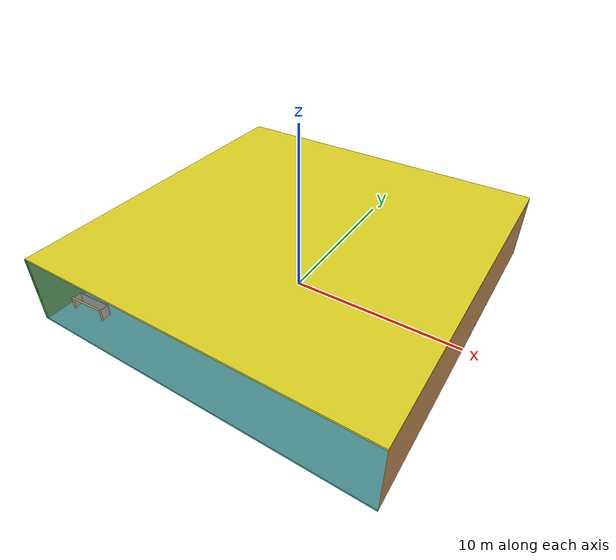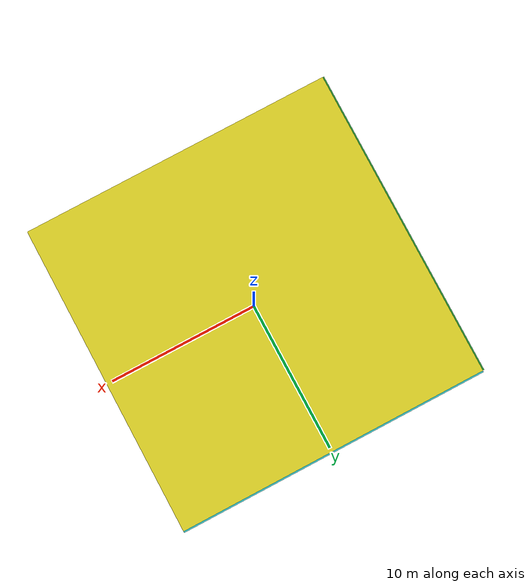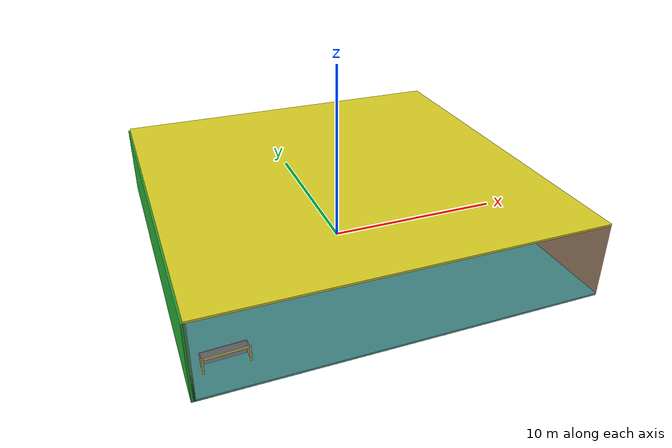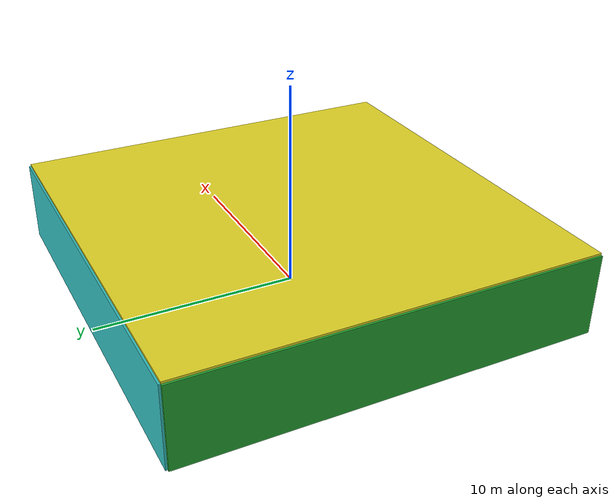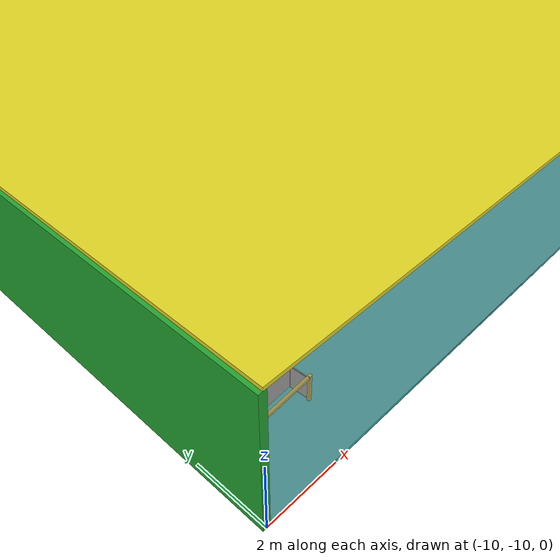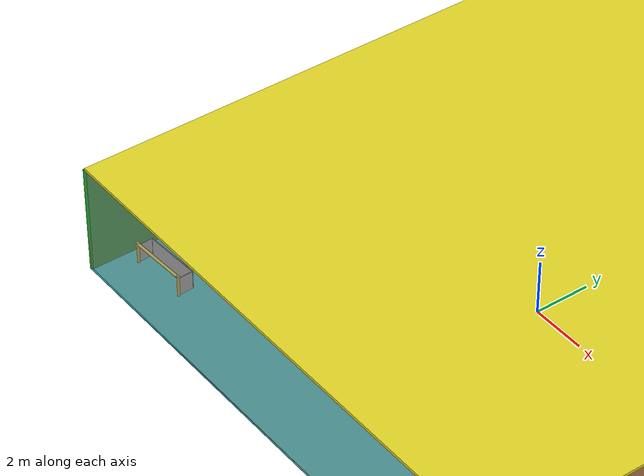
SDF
<sdf version="1.4">
 <world name="default">
  <physics type="ode">
   <max_step_size>0.001</max_step_size>
   <real_time_factor>1</real_time_factor>
   <real_time_update_rate>1000</real_time_update_rate>
   <gravity>0 0 -9.8</gravity>
  </physics>
  <scene><ambient>0.4 0.4 0.4 1</ambient><background>0.7 0.7 0.7 1</background><shadows>1</shadows></scene>
  <model name="Surrounding">
   <static>1</static>
   <link name="Ceiling">
    <collision name="Ceiling_Collision"><geometry><box><size>20 20 0.1</size></box></geometry></collision>
    <visual name="Ceiling_Visual">
     <geometry><box><size>20 20 0.1</size></box></geometry>
     <material>
      <script><uri>file://media/materials/scripts/gazebo.material</uri><name>Gazebo/Yellow</name></script>
     </material>
    </visual>
    <pose>0 0 4.05 0 0 0</pose>
   </link>
   <link name="Wall_South">
    <collision name="Wall_South_Collision">
     <geometry><box><size>20 0 4</size></box></geometry>
     <pose>0 0 2 0 -0 0</pose>
    </collision>
    <visual name="Wall_South_Visual">
     <pose>0 0 2 0 -0 0</pose>
     <geometry><box><size>20 0 4</size></box></geometry>
     <material>
      <script><uri>file://media/materials/scripts/gazebo.material</uri><name>Gazebo/GreyTransparent</name></script>
     </material>
    </visual>
    <velocity_decay><linear>0</linear><angular>0</angular></velocity_decay>
    <pose>0 -10 0 0 -0 0</pose>
   </link>
   <link name="Wall_East">
    <collision name="Wall_21_Collision">
     <geometry><box><size>20 0 4</size></box></geometry>
     <pose>0 0 2 0 -0 0</pose>
    </collision>
    <visual name="Wall_21_Visual">
     <pose>0 0 2 0 -0 0</pose>
     <geometry><box><size>20 0 4</size></box></geometry>
     <material>
      <script><uri>file://media/materials/scripts/gazebo.material</uri><name>Gazebo/WoodPallet</name></script>
     </material>
    </visual>
    <velocity_decay><linear>0</linear><angular>0</angular></velocity_decay>
    <pose>10 0 0 0 -0 1.5708</pose>
   </link>
   <link name="Wall_North">
    <collision name="Wall_22_Collision">
     <geometry><box><size>20 0.2 4</size></box></geometry>
     <pose>0 0 2 0 -0 0</pose>
    </collision>
    <visual name="Wall_22_Visual">
     <pose>0 0 2 0 -0 0</pose>
     <geometry><box><size>20 0.2 4</size></box></geometry>
     <material>
      <script>
       <uri>file://media/materials/scripts/gazebo.material</uri>
       <name>Gazebo/TurquoiseGlowOutline</name>
      </script>
     </material>
    </visual>
    <velocity_decay><linear>0</linear><angular>0</angular></velocity_decay>
    <pose>0 10 0 0 -0 0</pose>
   </link>
   <link name="Wall_West">
    <collision name="Wall_23_Collision">
     <geometry><box><size>20 0.2 4</size></box></geometry>
     <pose>0 0 2 0 -0 0</pose>
    </collision>
    <visual name="Wall_23_Visual">
     <pose>0 0 2 0 -0 0</pose>
     <geometry><box><size>20 0.2 4</size></box></geometry>
     <material>
      <script><uri>file://media/materials/scripts/gazebo.material</uri><name>Gazebo/Green</name></script>
     </material>
    </visual>
    <velocity_decay><linear>0</linear><angular>0</angular></velocity_decay>
    <pose>-10 0 0 0 0 -1.5708</pose>
   </link>
   <link name="Ground_link">
    <collision name="collision">
     <pose>0 0 .05 0 -0 0</pose>
     <geometry><box><size>20 20 0.1</size></box></geometry>
    </collision>
    <visual name="visual">
     <pose>0 0 .05 0 -0 0</pose>
     <geometry><box><size>20 20 0.1</size></box></geometry>
     <material>
      <script>
       <uri>file://media/materials/scripts/gazebo.material</uri>
       <name>Gazebo/TurquoiseGlowOutline</name>
      </script>
     </material>
    </visual>
   </link>
   <static>1</static>
  </model>
  <spherical_coordinates>
   <surface_model>EARTH_WGS84</surface_model>
   <latitude_deg>0</latitude_deg>
   <longitude_deg>0</longitude_deg>
   <elevation>0</elevation>
   <heading_deg>0</heading_deg>
  </spherical_coordinates>
  <light name="lightball_0" type="diffuse">
   <diffuse>0.8 0.8 0.8 1</diffuse>
   <specular>0.2 0.2 0.2 1</specular>
   <attenuation>
    <range>100</range>
    <constant>0.7</constant>
    <linear>0.01</linear>
    <quadratic>0.001</quadratic>
   </attenuation>
   <direction>-0.5 0.1 -0.9</direction>
   <pose>-8.59495353047 3.12189907795 3.34957130508 0 0 0</pose>
  </light>
  <light name="lightball_1" type="diffuse">
   <diffuse>0.8 0.8 0.8 1</diffuse>
   <specular>0.2 0.2 0.2 1</specular>
   <attenuation>
    <range>100</range>
    <constant>0.7</constant>
    <linear>0.01</linear>
    <quadratic>0.001</quadratic>
   </attenuation>
   <direction>-0.5 0.1 -0.9</direction>
   <pose>2.37106459927 8.7517383712 2.91183459929 0 0 0</pose>
  </light>
  <light name="lightball_2" type="diffuse">
   <diffuse>0.8 0.8 0.8 1</diffuse>
   <specular>0.2 0.2 0.2 1</specular>
   <attenuation>
    <range>100</range>
    <constant>0.7</constant>
    <linear>0.01</linear>
    <quadratic>0.001</quadratic>
   </attenuation>
   <direction>-0.5 0.1 -0.9</direction>
   <pose>0.633537327641 -2.13977299755 3.44288476601 0 0 0</pose>
  </light>
  <light name="lightball_3" type="diffuse">
   <diffuse>0.8 0.8 0.8 1</diffuse>
   <specular>0.2 0.2 0.2 1</specular>
   <attenuation>
    <range>100</range>
    <constant>0.7</constant>
    <linear>0.01</linear>
    <quadratic>0.001</quadratic>
   </attenuation>
   <direction>-0.5 0.1 -0.9</direction>
   <pose>-3.5008098024 -1.53589447689 1.88756601099 0 0 0</pose>
  </light>
  <light name="lightball_4" type="diffuse">
   <diffuse>0.8 0.8 0.8 1</diffuse>
   <specular>0.2 0.2 0.2 1</specular>
   <attenuation>
    <range>100</range>
    <constant>0.7</constant>
    <linear>0.01</linear>
    <quadratic>0.001</quadratic>
   </attenuation>
   <direction>-0.5 0.1 -0.9</direction>
   <pose>-4.56798608861 -9.21666437838 2.13643166219 0 0 0</pose>
  </light>
  <include>
   <uri>model://robocup_3Dsim_goal</uri>
   <pose>-8.27986462256 -8.60618432583 0 0 0 1.6216888235</pose>
  </include>
  <include>
   <uri>model://construction_cone</uri>
   <pose>-4.94867060545 -4.88652298042 0 0 0 2.48236062439</pose>
  </include>
  <include>
   <uri>model://textured_shapes</uri>
   <pose>5.01334992571 0.314335123591 0 0 0 0.504803219864</pose>
  </include>
  <include><uri>model://table</uri><pose>7.73694572372 0.635737605246 0 0 0 2.24336768345</pose></include>
  <include><uri>model://cabinet</uri><pose>6.79964450885 5.1433398077 0 0 0 2.12308857592</pose></include>
 </world>
</sdf>

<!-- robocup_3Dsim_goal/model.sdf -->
<sdf version="1.5">
  <model name="robocup_3d_goal">
    <static>true</static>
    <link name="left_post">
      <pose>0 1.05 0.45 0 0 0</pose>
      <collision name="collision">
        <geometry>
          <cylinder>
            <radius>0.05</radius>
            <length>0.9</length>
          </cylinder>
        </geometry>
      </collision>
      <visual name="visual">
        <geometry>
          <cylinder>
            <radius>0.05</radius>
            <length>0.9</length>
          </cylinder>
        </geometry>
        <material>
          <script>
            <uri>file://media/materials/scripts/gazebo.material</uri>
            <name>Gazebo/ZincYellow</name>
          </script>
        </material>
      </visual>
    </link>
    <link name="left_support_horiz_lower">
      <pose>0.30 1.05 0.01 0 0 0</pose>
      <collision name="collision">
        <geometry>
          <box>
            <size>0.50 0.02 0.02</size>
          </box>
        </geometry>
      </collision>
      <visual name="visual">
        <geometry>
          <box>
            <size>0.50 0.02 0.02</size>
          </box>
        </geometry>
        <material>
          <script>
            <uri>file://media/materials/scripts/gazebo.material</uri>
            <name>Gazebo/White</name>
          </script>
        </material>
      </visual>
    </link>
    <link name="left_support_horiz_upper">
      <pose>0.30 1.05 0.79 0 0 0</pose>
      <collision name="collision">
        <geometry>
          <box>
            <size>0.50 0.02 0.02</size>
          </box>
        </geometry>
      </collision>
      <visual name="visual">
        <geometry>
          <box>
            <size>0.50 0.02 0.02</size>
          </box>
        </geometry>
        <material>
          <script>
            <uri>file://media/materials/scripts/gazebo.material</uri>
            <name>Gazebo/White</name>
          </script>
        </material>
      </visual>
    </link>
    <link name="left_support_vertical">
      <pose>0.56 1.05 0.4 0 1.5708 0</pose>
      <collision name="collision">
        <geometry>
          <box>
            <size>0.80 0.02 0.02</size>
          </box>
        </geometry>
      </collision>
      <visual name="visual">
        <geometry>
          <box>
            <size>0.80 0.02 0.02</size>
          </box>
        </geometry>
        <material>
          <script>
            <uri>file://media/materials/scripts/gazebo.material</uri>
            <name>Gazebo/White</name>
          </script>
        </material>
      </visual>
    </link>
    <link name="right_support_horiz_lower">
      <pose>0.30 -1.05 0.01 0 0 0</pose>
      <collision name="collision">
        <geometry>
          <box>
            <size>0.50 0.02 0.02</size>
          </box>
        </geometry>
      </collision>
      <visual name="visual">
        <geometry>
          <box>
            <size>0.50 0.02 0.02</size>
          </box>
        </geometry>
        <material>
          <script>
            <uri>file://media/materials/scripts/gazebo.material</uri>
            <name>Gazebo/White</name>
          </script>
        </material>
      </visual>
    </link>
    <link name="right_support_horiz_upper">
      <pose>0.30 -1.05 0.79 0 0 0</pose>
      <collision name="collision">
        <geometry>
          <box>
            <size>0.50 0.02 0.02</size>
          </box>
        </geometry>
      </collision>
      <visual name="visual">
        <geometry>
          <box>
            <size>0.50 0.02 0.02</size>
          </box>
        </geometry>
        <material>
          <script>
            <uri>file://media/materials/scripts/gazebo.material</uri>
            <name>Gazebo/White</name>
          </script>
        </material>
      </visual>
    </link>
    <link name="right_support_vertical">
      <pose>0.56 -1.05 0.4 0 1.5708 0</pose>
      <collision name="collision">
        <geometry>
          <box>
            <size>0.80 0.02 0.02</size>
          </box>
        </geometry>
      </collision>
      <visual name="visual">
        <geometry>
          <box>
            <size>0.80 0.02 0.02</size>
          </box>
        </geometry>
        <material>
          <script>
            <uri>file://media/materials/scripts/gazebo.material</uri>
            <name>Gazebo/White</name>
          </script>
        </material>
      </visual>
    </link>
    <link name="center_support_horiz_lower">
      <pose>0.56 0 0.01 0 1.5708 0</pose>
      <collision name="collision">
        <geometry>
          <box>
            <size>0.02 2.08 0.02</size>
          </box>
        </geometry>
      </collision>
      <visual name="visual">
        <geometry>
          <box>
            <size>0.02 2.08 0.02</size>
          </box>
        </geometry>
        <material>
          <script>
            <uri>file://media/materials/scripts/gazebo.material</uri>
            <name>Gazebo/White</name>
          </script>
        </material>
      </visual>
    </link>
    <link name="center_support_horiz_upper">
      <pose>0.56 0 0.79 0 1.5708 0</pose>
      <collision name="collision">
        <geometry>
          <box>
            <size>0.02 2.08 0.02</size>
          </box>
        </geometry>
      </collision>
      <visual name="visual">
        <geometry>
          <box>
            <size>0.02 2.08 0.02</size>
          </box>
        </geometry>
        <material>
          <script>
            <uri>file://media/materials/scripts/gazebo.material</uri>
            <name>Gazebo/White</name>
          </script>
        </material>
      </visual>
    </link>
    <link name="right_post">
      <pose>0 -1.05 0.45 0 0 0</pose>
      <collision name="collision">
        <geometry>
          <cylinder>
            <radius>0.05</radius>
            <length>0.9</length>
          </cylinder>
        </geometry>
      </collision>
      <visual name="visual">
        <geometry>
          <cylinder>
            <radius>0.05</radius>
            <length>0.9</length>
          </cylinder>
        </geometry>
        <material>
          <script>
            <uri>file://media/materials/scripts/gazebo.material</uri>
            <name>Gazebo/ZincYellow</name>
          </script>
        </material>
      </visual>
    </link>
    <link name="crossbar">
      <pose>0 0 0.85 1.57 1.57 0</pose>
      <collision name="collision">
        <geometry>
          <cylinder>
            <radius>0.05</radius>
            <length>2.0</length>
          </cylinder>
        </geometry>
      </collision>
      <visual name="visual">
        <geometry>
          <cylinder>
            <radius>0.05</radius>
            <length>2.0</length>
          </cylinder>
        </geometry>
        <material>
          <script>
            <uri>file://media/materials/scripts/gazebo.material</uri>
            <name>Gazebo/ZincYellow</name>
          </script>
        </material>
      </visual>
    </link>
    <link name="center_net">
      <pose>0.56 0 0.40 0 0 0</pose>
      <collision name="collision">
        <geometry>
          <box>
            <size>0.01 2.1 0.80</size>
          </box>
        </geometry>
      </collision>
      <visual name="visual">
        <geometry>
          <box>
            <size>0.01 2.1 0.80</size>
          </box>
        </geometry>
        <material>
          <script>
            <uri>model://../model_source/models/robocup09_spl_field/materials/scripts/</uri>
            <uri>model://../model_source/models/robocup09_spl_field/materials/textures/</uri>
            <name>RoboCup/Net</name>
          </script>
        </material>
      </visual>
    </link>
    <link name="left_net">
      <pose>0.30 1.05 0.40 0 0 0</pose>
      <collision name="collision">
        <geometry>
          <box>
            <size>0.50 0.01 0.76</size>
          </box>
        </geometry>
      </collision>
      <visual name="visual">
        <geometry>
          <box>
            <size>0.50 0.01 0.76</size>
          </box>
        </geometry>
        <material>
          <script>
            <uri>model://../model_source/models/robocup09_spl_field/materials/scripts/</uri>
            <uri>model://../model_source/models/robocup09_spl_field/materials/textures/</uri>
            <name>RoboCup/Net</name>
          </script>
        </material>
      </visual>
    </link>
    <link name="right_net">
      <pose>0.30 -1.05 0.40 0 0 0</pose>
      <collision name="collision">
        <geometry>
          <box>
            <size>0.50 0.01 0.76</size>
          </box>
        </geometry>
      </collision>
      <visual name="visual">
        <geometry>
          <box>
            <size>0.50 0.01 0.76</size>
          </box>
        </geometry>
        <material>
          <script>
            <uri>model://../model_source/models/robocup09_spl_field/materials/scripts/</uri>
            <uri>model://../model_source/models/robocup09_spl_field/materials/textures/</uri>
            <name>RoboCup/Net</name>
          </script>
        </material>
      </visual>
    </link>
  </model>
</sdf>

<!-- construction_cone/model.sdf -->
<sdf version="1.5">
  <model name="Construction Cone">
    <link name="link">
      <collision name="collision">
        <geometry>
          <mesh>
            <scale>10 10 10</scale>
            <uri>file://isr-testbed/construction_cone/meshes/construction_cone.dae</uri>
          </mesh>
        </geometry>
      </collision>
      <visual name="visual">
        <geometry>
          <mesh>
            <scale>10 10 10</scale>
            <uri>file://isr-testbed/construction_cone/meshes/construction_cone.dae</uri>
          </mesh>
        </geometry>
      </visual>
    </link>
  </model>
</sdf>

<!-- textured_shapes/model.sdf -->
<sdf version="1.6">
  <model name="textured_shapes">
    <pose>0 0 0.5 0 0 0</pose>
    <link name="box">
      <pose>0 -1.5 0 0 0 0</pose>
      <collision name="collision">
        <geometry>
          <box>
            <size>1 1 1</size>
          </box>
        </geometry>
      </collision>
      <visual name="visual">
        <geometry>
          <box>
            <size>1 1 1</size>
          </box>
        </geometry>
        <material>
          <script>
            <uri>model://../model_source/models/textured_shapes/materials/scripts</uri>
            <uri>model://../model_source/models/textured_shapes/materials/textures</uri>
            <name>TexturedShape/Squares</name>
          </script>
        </material>
      </visual>
    </link>
    <link name="sphere">
      <collision name="collision">
        <geometry>
          <sphere>
            <radius>0.5</radius>
          </sphere>
        </geometry>
      </collision>
      <visual name="visual">
        <geometry>
          <sphere>
            <radius>0.5</radius>
          </sphere>
        </geometry>
        <material>
          <script>
            <uri>model://../model_source/models/textured_shapes/materials/scripts</uri>
            <uri>model://../model_source/models/textured_shapes/materials/textures</uri>
            <name>TexturedShape/Squares</name>
          </script>
        </material>
      </visual>
    </link>
    <link name="cylinder">
      <pose>0 1.5 0 0 0 0</pose>
      <collision name="collision">
        <geometry>
          <cylinder>
            <radius>0.5</radius>
            <length>1</length>
          </cylinder>
        </geometry>
      </collision>
      <visual name="visual">
        <geometry>
          <cylinder>
            <radius>0.5</radius>
            <length>1</length>
          </cylinder>
        </geometry>
        <material>
          <script>
            <uri>model://../model_source/models/textured_shapes/materials/scripts</uri>
            <uri>model://../model_source/models/textured_shapes/materials/textures</uri>
            <name>TexturedShape/Squares</name>
          </script>
        </material>
      </visual>
    </link>
  </model>
</sdf>

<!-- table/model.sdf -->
<sdf version="1.5">
  <model name="table">
    <static>true</static>
    <link name="link">
      <collision name="surface">
        <pose>0 0 1.0 0 0 0</pose>
        <geometry>
          <box>
            <size>1.5 0.8 0.03</size>
          </box>
        </geometry>
        <surface>
          <friction>
            <ode>
              <mu>0.6</mu>
              <mu2>0.6</mu2>
            </ode>
          </friction>
        </surface>
      </collision>
      <visual name="visual1">
        <pose>0 0 1.0 0 0 0</pose>
        <geometry>
          <box>
            <size>1.5 0.8 0.03</size>
          </box>
        </geometry>
        <material>
          <script>
            <uri>model://media/materials/scripts/gazebo.material</uri>
            <name>Gazebo/Wood</name>
          </script>
        </material>
      </visual>
      <collision name="front_left_leg">
        <pose>0.68 0.38 0.5 0 0 0</pose>
        <geometry>
          <cylinder>
            <radius>0.02</radius>
            <length>1.0</length>
          </cylinder>
        </geometry>
      </collision>
      <visual name="front_left_leg">
        <pose>0.68 0.38 0.5 0 0 0</pose>
        <geometry>
          <cylinder>
            <radius>0.02</radius>
            <length>1.0</length>
          </cylinder>
        </geometry>
        <material>
          <script>
            <uri>model://media/materials/scripts/gazebo.material</uri>
            <name>Gazebo/Grey</name>
          </script>
        </material>
      </visual>
      <collision name="front_right_leg">
        <pose>0.68 -0.38 0.5 0 0 0</pose>
        <geometry>
          <cylinder>
            <radius>0.02</radius>
            <length>1.0</length>
          </cylinder>
        </geometry>
      </collision>
      <visual name="front_right_leg">
        <pose>0.68 -0.38 0.5 0 0 0</pose>
        <geometry>
          <cylinder>
            <radius>0.02</radius>
            <length>1.0</length>
          </cylinder>
        </geometry>
        <material>
          <script>
            <uri>model://media/materials/scripts/gazebo.material</uri>
            <name>Gazebo/Grey</name>
          </script>
        </material>
      </visual>
      <collision name="back_right_leg">
        <pose>-0.68 -0.38 0.5 0 0 0</pose>
        <geometry>
          <cylinder>
            <radius>0.02</radius>
            <length>1.0</length>
          </cylinder>
        </geometry>
      </collision>
      <visual name="back_right_leg">
        <pose>-0.68 -0.38 0.5 0 0 0</pose>
        <geometry>
          <cylinder>
            <radius>0.02</radius>
            <length>1.0</length>
          </cylinder>
        </geometry>
        <material>
          <script>
            <uri>model://media/materials/scripts/gazebo.material</uri>
            <name>Gazebo/Grey</name>
          </script>
        </material>
      </visual>
      <collision name="back_left_leg">
        <pose>-0.68 0.38 0.5 0 0 0</pose>
        <geometry>
          <cylinder>
            <radius>0.02</radius>
            <length>1.0</length>
          </cylinder>
        </geometry>
      </collision>
      <visual name="back_left_leg">
        <pose>-0.68 0.38 0.5 0 0 0</pose>
        <geometry>
          <cylinder>
            <radius>0.02</radius>
            <length>1.0</length>
          </cylinder>
        </geometry>
        <material>
          <script>
            <uri>model://media/materials/scripts/gazebo.material</uri>
            <name>Gazebo/Grey</name>
          </script>
        </material>
      </visual>
    </link>
  </model>
</sdf>

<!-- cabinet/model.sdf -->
<sdf version="1.5">
  <model name="cabinet">
    <static>true</static>
    <link name="cabinet_bottom_plate">
      <inertial>
        <pose>0 0 -1 0 0 0</pose>
        <inertia>
          <ixx>2.050000</ixx>
          <ixy>0</ixy>
          <ixz>0</ixz>
          <iyy>2.050000</iyy>
          <iyz>0</iyz>
          <izz>2.050000</izz>
        </inertia>
        <mass>25.000000</mass>
      </inertial>
      <collision name="cabinet_bottom_plate_geom">
        <pose>0 0 0.010000 0 0 0</pose>
        <geometry>
          <box>
            <size>0.450000 0.450000 0.020000</size>
          </box>
        </geometry>
      </collision>
      <visual name="cabinet_bottom_plate_geom_visual">
        <pose>0 0 0.010000 0 0 0</pose>
        <geometry>
          <box>
            <size>0.450000 0.450000 0.020000</size>
          </box>
        </geometry>
        <material>
          <script>
            <uri>model://media/materials/scripts/gazebo.material</uri>
            <name>Gazebo/Wood</name>
          </script>
        </material>
      </visual>
      <collision name="cabinet_bottom_plate_geom_cabinet_back_plate">
        <pose>0.235000 0 0.510000 0 0 0</pose>
        <geometry>
          <box>
            <size>0.020000 0.450000 1.020000</size>
          </box>
        </geometry>
      </collision>
      <visual name="cabinet_bottom_plate_geom_cabinet_back_plate_visual">
        <pose>0.235000 0 0.510000 0 0 0</pose>
        <geometry>
          <box>
            <size>0.020000 0.450000 1.020000</size>
          </box>
        </geometry>
        <material>
          <script>
            <uri>model://media/materials/scripts/gazebo.material</uri>
            <name>Gazebo/Wood</name>
          </script>
        </material>
      </visual>
      <collision name="cabinet_bottom_plate_geom_cabinet_left_plate">
        <pose>0 0.235000 0.510000 0 0 0</pose>
        <geometry>
          <box>
            <size>0.450000 0.020000 1.020000</size>
          </box>
        </geometry>
      </collision>
      <visual name="cabinet_bottom_plate_geom_cabinet_left_plate_visual">
        <pose>0 0.235000 0.510000 0 0 0</pose>
        <geometry>
          <box>
            <size>0.450000 0.020000 1.020000</size>
          </box>
        </geometry>
        <material>
          <script>
            <uri>model://media/materials/scripts/gazebo.material</uri>
            <name>Gazebo/Wood</name>
          </script>
        </material>
      </visual>
      <collision name="cabinet_bottom_plate_geom_cabinet_middle_plate">
        <pose>0 0 0.510000 0 0 0</pose>
        <geometry>
          <box>
            <size>0.450000 0.450000 0.020000</size>
          </box>
        </geometry>
      </collision>
      <visual name="cabinet_bottom_plate_geom_cabinet_middle_plate_visual">
        <pose>0 0 0.510000 0 0 0</pose>
        <geometry>
          <box>
            <size>0.450000 0.450000 0.020000</size>
          </box>
        </geometry>
        <material>
          <script>
            <uri>model://media/materials/scripts/gazebo.material</uri>
            <name>Gazebo/Wood</name>
          </script>
        </material>
      </visual>
      <collision name="cabinet_bottom_plate_geom_cabinet_right_plate">
        <pose>0 -0.235000 0.510000 0 0 0</pose>
        <geometry>
          <box>
            <size>0.450000 0.020000 1.020000</size>
          </box>
        </geometry>
      </collision>
      <visual name="cabinet_bottom_plate_geom_cabinet_right_plate_visual">
        <pose>0 -0.235000 0.510000 0 0 0</pose>
        <geometry>
          <box>
            <size>0.450000 0.020000 1.020000</size>
          </box>
        </geometry>
        <material>
          <script>
            <uri>model://media/materials/scripts/gazebo.material</uri>
            <name>Gazebo/Wood</name>
          </script>
        </material>
      </visual>
      <collision name="cabinet_bottom_plate_geom_cabinet_top_plate">
        <pose>0 0 1.010000 0 0 0</pose>
        <geometry>
          <box>
            <size>0.450000 0.450000 0.020000</size>
          </box>
        </geometry>
      </collision>
      <visual name="cabinet_bottom_plate_geom_cabinet_top_plate_visual">
        <pose>0 0 1.010000 0 0 0</pose>
        <geometry>
          <box>
            <size>0.450000 0.450000 0.020000</size>
          </box>
        </geometry>
        <material>
          <script>
            <uri>model://media/materials/scripts/gazebo.material</uri>
            <name>Gazebo/Wood</name>
          </script>
        </material>
      </visual>
    </link>
  </model>
</sdf>
